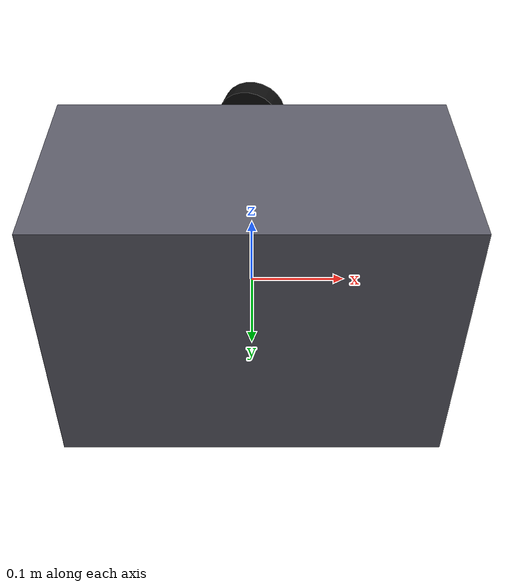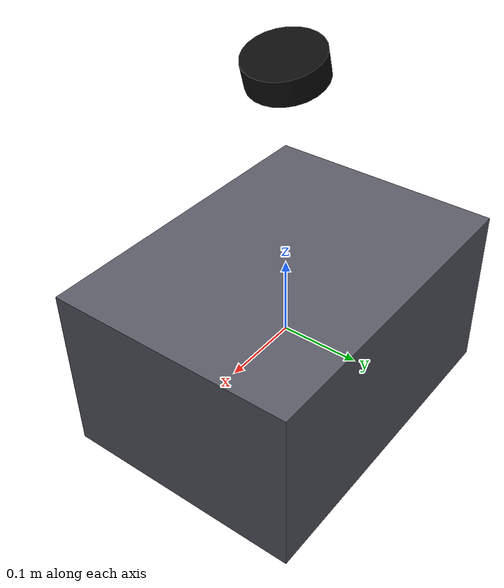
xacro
<?xml version="1.0"?>
<robot name="lite3_planar" xmlns:xacro="http://www.ros.org/wiki/xacro">
  <xacro:arg name="carrier_visual" default="true"/>
  <xacro:property name="lidar_z" value="0.34"/><xacro:property name="lidar_pitch_deg" value="15"/>
  <!-- ================= 官方骨架：TORSO（保持官方名；M2R5 起非 root，恒等挂于 base_link 下） ================= -->
  <link name="TORSO">
    <inertial>
      <origin xyz="0 0 0" rpy="0 0 0"/>
      <mass value="15.0"/>
      <inertia ixx="0.3406" iyy="0.1806" izz="0.2810" ixy="0" ixz="0" iyz="0"/>
    </inertial>
    <xacro:if value="$(arg carrier_visual)">
      <visual>
        <origin xyz="0 0 0" rpy="0 0 0"/>
        <geometry><box size="0.42 0.31 0.22"/></geometry>
        <material name="torso_grey"><color rgba="0.35 0.35 0.4 1"/></material>
      </visual>
    </xacro:if>
    <collision>
      <origin xyz="0 0 0" rpy="0 0 0"/>
      <geometry><box size="0.42 0.31 0.22"/></geometry>
    </collision>
  </link>

  <joint name="base_to_torso" type="fixed">
    <parent link="base_link"/>
    <child link="TORSO"/>
    <origin xyz="0 0 0" rpy="0 0 0"/>
  </joint>
  <link name="base_link">
    <inertial>
      <mass value="0.01"/>
      <inertia ixx="1e-5" iyy="1e-5" izz="1e-5" ixy="0" ixz="0" iyz="0"/>
    </inertial>
  </link>

  <joint name="base_to_rslidar" type="fixed">
    <parent link="base_link"/>
    <child link="rslidar"/>
    <origin xyz="0 0 ${lidar_z}" rpy="0 ${radians(lidar_pitch_deg)} 0"/>   <!-- ★R409 乙（★第二槽＝pitch，第一槽是 roll）：展开值＝xyz "0 0 0.34" ‖ rpy "0 0.2617993877991494 0"（＝15° 下倾）。★这一行改了活体行为 ⇒ 旧读数按 az §8 冻结名单标 carrier=gen0、新读数标 gen1。 -->
  </joint>
  <link name="rslidar">
    <inertial>
      <mass value="0.05"/>
      <inertia ixx="1e-4" iyy="1e-4" izz="1e-4" ixy="0" ixz="0" iyz="0"/>
    </inertial>
    <xacro:if value="$(arg carrier_visual)">
      <visual>
        <geometry><cylinder radius="0.045" length="0.03"/></geometry>
        <material name="lidar_black"><color rgba="0.05 0.05 0.05 1"/></material>
      </visual>
    </xacro:if>
    <!-- D-M1-5 取舍声明④：sensor 起点不得落于任何自身 collision 内——collision 整块删除（M1 返工 R1 已收口），仅注释留位 -->
  </link>

  <!-- ================= fratopa Mid360（参数逐字照 README，type=3 → CustomMsg） ================= -->
  <gazebo reference="rslidar">
    <sensor type="ray" name="laser_livox">
      <pose>0 0 0 0 0 0</pose>
      <visualize>false</visualize>
      <always_on>true</always_on>
      <update_rate>10</update_rate>
      <plugin name="livox_mid360_plugin" filename="liblivox_laser_simulation.so">
        <ray>
          <scan>
            <horizontal>
              <samples>100</samples>
              <resolution>1</resolution>
              <min_angle>-3.1415926535897931</min_angle>
              <max_angle>3.1415926535897931</max_angle>
            </horizontal>
            <vertical>
              <samples>50</samples>
              <resolution>1</resolution>
              <min_angle>-3.1415926535897931</min_angle>
              <max_angle>3.1415926535897931</max_angle>
            </vertical>
          </scan>
          <range>
            <min>0.1</min>
            <max>40</max>
            <resolution>1</resolution>
          </range>
          <noise>
            <type>gaussian</type>
            <mean>0.0</mean>
            <stddev>0.0</stddev>
          </noise>
        </ray>
        <visualize>false</visualize>
        <samples>20000</samples>
        <downsample>1</downsample>
        <csv_file_name>mid360-real-centr.csv</csv_file_name>
        <publish_pointcloud_type>3</publish_pointcloud_type>
        <ros_topic>/livox/lidar</ros_topic>
        <frameName>rslidar</frameName>
      </plugin>
    </sensor>
  </gazebo>

  <!-- ================= Gazebo IMU 200Hz（/livox/imu，faster_lio imu_topic 契约） ================= -->
  <gazebo reference="rslidar">
    <sensor type="imu" name="mid360_imu">
      <always_on>true</always_on>
      <update_rate>200</update_rate>
      <plugin name="gazebo_ros_imu_sensor" filename="libgazebo_ros_imu_sensor.so">
        <alwaysOn>true</alwaysOn>
        <updateRateHZ>200</updateRateHZ>
        <bodyName>rslidar</bodyName>
        <frameName>rslidar</frameName>
        <topicName>/livox/imu</topicName>
        <gaussianNoise>0.01</gaussianNoise>
        <xyzOffset>0 0 0</xyzOffset>
        <rpyOffset>0 0 0</rpyOffset>
      </plugin>
    </sensor>
  </gazebo>

  <gazebo>
    <plugin name="lite3_planar_drive" filename="liblite3_planar_drive.so">
      <robotNamespace>/</robotNamespace>
      <commandTopic>cmd_vel</commandTopic>
      <odometryTopic>/sim/odom_gt</odometryTopic>
      <odometryFrame>odom</odometryFrame>
      <robotBaseFrame>base_link</robotBaseFrame>
      <driveMode>dynamic</driveMode>
      <cmdTimeout>10.0</cmdTimeout>
      <odometryRate>50</odometryRate>
    </plugin>
  </gazebo>

  <gazebo reference="TORSO">
    <mu1>0.1</mu1>
    <mu2>0.1</mu2>
  </gazebo>

</robot>
